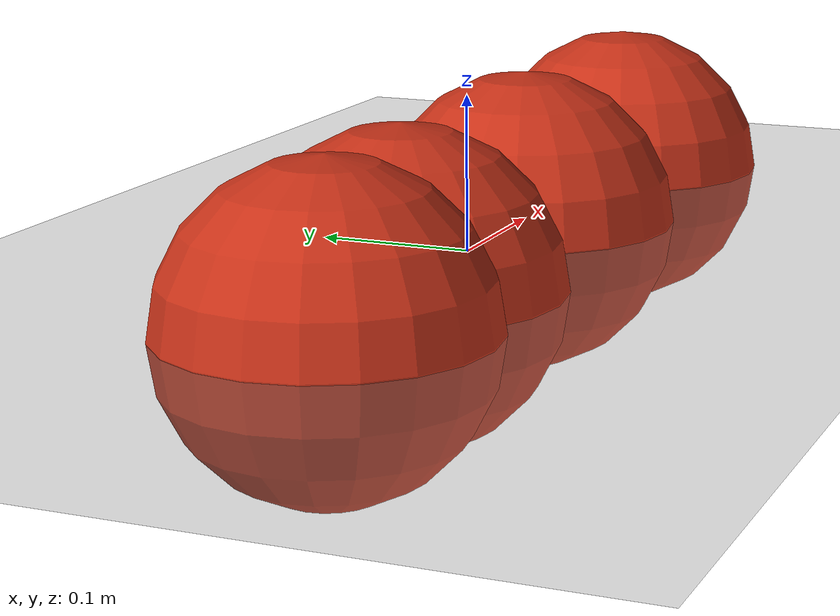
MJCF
<mujoco model="contact sorted">
  <worldbody>
    <light pos="0 0 3"/>
    <geom name="floor" type="plane" size=".5 1 .01"/>

    <body name="spheres">
      <joint axis="0 -1 0"/>
      <geom size=".1" pos="-.1 0 0" rgba=".8 .2 .1 1"/>
      <geom size=".1" pos=".1 0 0" rgba=".8 .2 .1 1"/>
      <geom size=".1" pos="-.2 0 0" rgba=".8 .2 .1 1"/>
      <geom size=".1" pos=".3 0 0" rgba=".8 .2 .1 1"/>
    </body>
  </worldbody>

  <sensor>
    <contact name="unsorted" body1="spheres" num="4" data="dist"/>
    <contact name="sorted dist" body1="spheres" num="4" data="dist" reduce="mindist"/>
    <contact name="sorted force" body1="spheres" num="4" data="force" reduce="maxforce"/>
    <contact name="smallest dist" body1="spheres" num="1" data="dist" reduce="mindist"/>
    <contact name="largest force" body1="spheres" num="1" data="force" reduce="maxforce"/>
  </sensor>
</mujoco>
